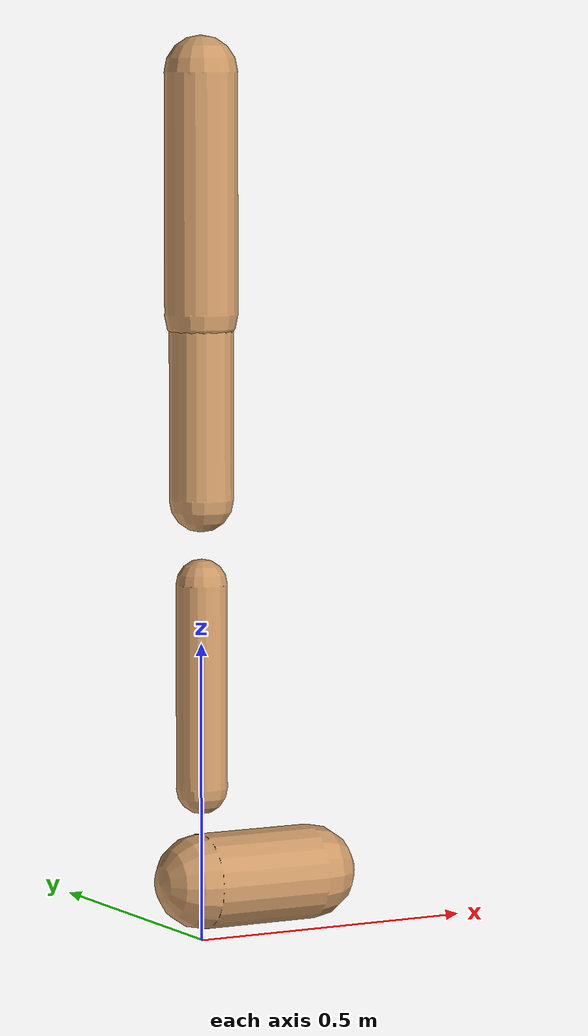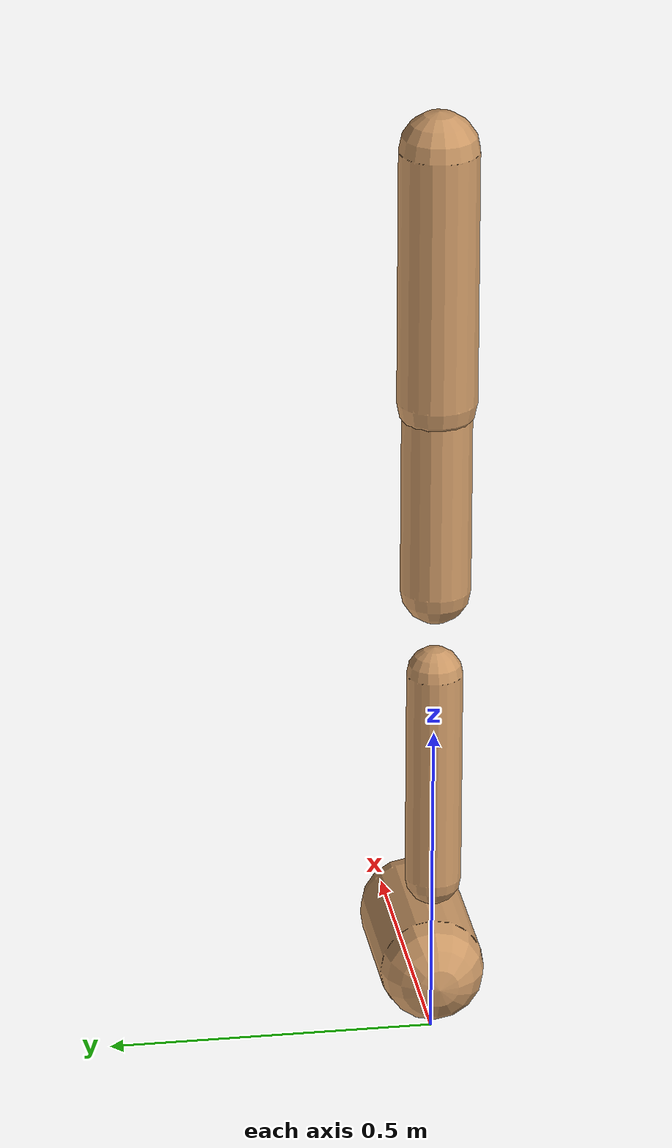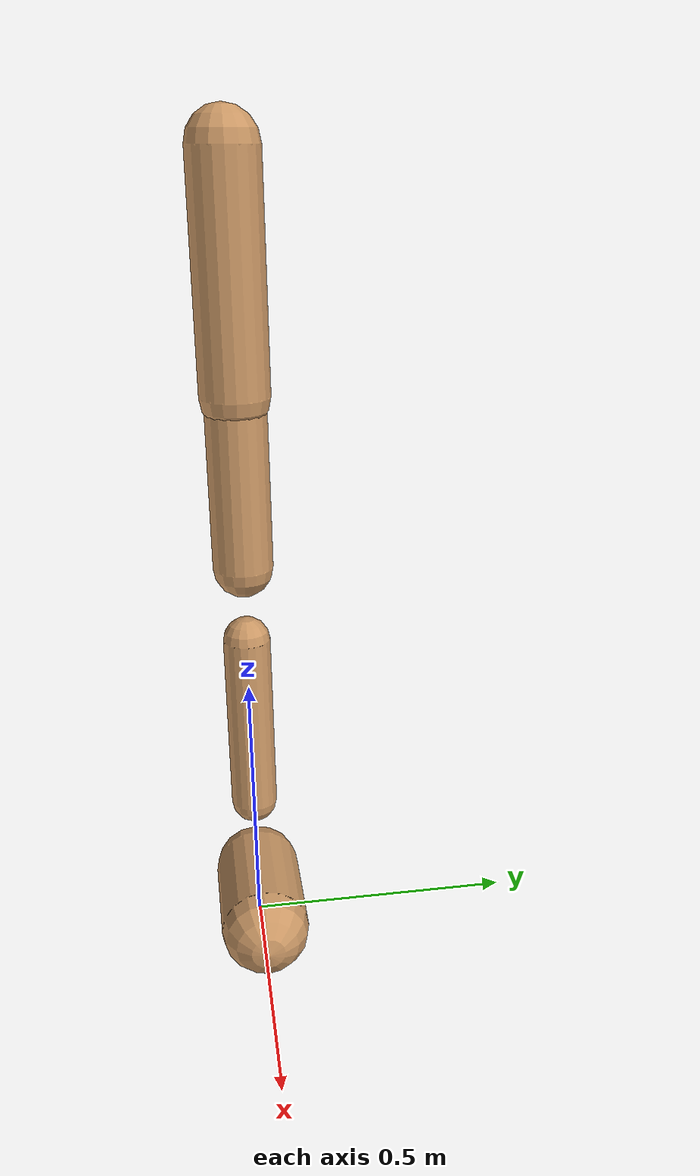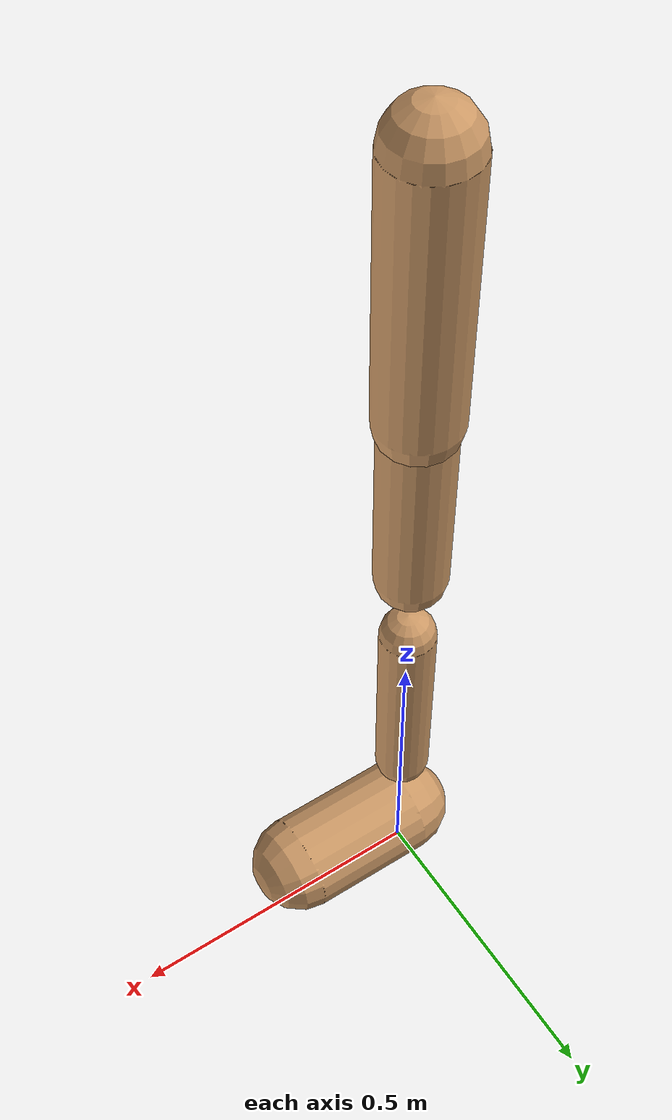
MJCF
<mujoco model="walker2d">
  <compiler angle="degree" coordinate="global" inertiafromgeom="true" />
  <default>
    <joint armature="0.01" damping=".1" limited="true" />
    <geom conaffinity="0" condim="3" contype="1" density="1000" friction="0.8 .1 .1" rgba="0.8 0.6 .4 1" />
  </default>
  <option integrator="RK4" timestep="0.002" />
  <worldbody>

    <body name="torso" pos="0 0 -0.2996764879103832">
      <joint armature="0" axis="1 0 0" damping="0" limited="false" name="ignorex" pos="0 0 0" stiffness="0" type="slide" />
      <joint armature="0" axis="0 0 1" damping="0" limited="false" name="ignorez" pos="0 0 0" ref="1.25" stiffness="0" type="slide" />
      <joint armature="0" axis="0 1 0" damping="0" limited="false" name="ignorey" pos="0 0 0" stiffness="0" type="hinge" />
      <geom fromto="0 0 1.45 0 0 1.05" name="torso_geom" size="0.06151413530647152" type="capsule" />
      <body name="thigh">
        <joint axis="0 -1 0" name="thigh_joint" pos="0 0 1.05" range="-150 0" type="hinge" />
        <geom fromto="0.0 0.0 1.05 0.0 0.0 0.7419520205891289" name="thigh_geom" size="0.054085147337441034" type="capsule" />
        <body name="leg" pos="0.0 0.0 0.14195202058912892">
          <joint axis="0 -1 0" name="leg_joint" pos="0 0 0.6" range="-150 0" type="hinge" />
          <geom fromto="0.0 0.0 0.6 0.0 0.0 0.2577244673212543" name="leg_geom" size="0.04326811786995283" type="capsule" />
          <body name="foot" pos="0.0 0.0 0.1577244673212543">
            <joint axis="0 -1 0" name="foot_joint" pos="0 0 0.1" range="-45 45" type="hinge" />
            <geom fromto="-0.0 0.0 0.1 0.20231993185337932 0.0 0.1" name="foot_geom" size="0.08025703712906881" type="capsule" />
          </body>
        </body>
      </body>

      <body name="thigh_left">
        <joint axis="0 -1 0" name="thigh_left_joint" pos="0 0 1.05" range="-150 0" type="hinge" />
        <geom fromto="0.0 0.0 1.05 0.0 0.0 0.7419520205891289" name="thigh_left_geom" rgba=".7 .3 .6 1" size="0.054085147337441034" type="capsule" />
        <body name="leg_left" pos="0.0 0.0 0.14195202058912892">
          <joint axis="0 -1 0" name="leg_left_joint" pos="0 0 0.6" range="-150 0" type="hinge" />
          <geom fromto="0.0 0.0 0.6 0.0 0.0 0.2577244673212543" name="leg_left_geom" rgba=".7 .3 .6 1" size="0.04326811786995283" type="capsule" />
          <body name="foot_left" pos="0.0 0.0 0.1577244673212543">
            <joint axis="0 -1 0" name="foot_left_joint" pos="0 0 0.1" range="-45 45" type="hinge" />
            <geom fromto="-0.0 0.0 0.1 0.20231993185337932 0.0 0.1" name="foot_left_geom" rgba=".7 .3 .6 1" size="0.08025703712906881" type="capsule" />
          </body>
        </body>
      </body>
    </body>
  </worldbody>
  <actuator>

    <motor ctrllimited="true" ctrlrange="-1.0 1.0" gear="100" joint="thigh_joint" />
    <motor ctrllimited="true" ctrlrange="-1.0 1.0" gear="100" joint="leg_joint" />
    <motor ctrllimited="true" ctrlrange="-1.0 1.0" gear="100" joint="foot_joint" />
    <motor ctrllimited="true" ctrlrange="-1.0 1.0" gear="100" joint="thigh_left_joint" />
    <motor ctrllimited="true" ctrlrange="-1.0 1.0" gear="100" joint="leg_left_joint" />
    <motor ctrllimited="true" ctrlrange="-1.0 1.0" gear="100" joint="foot_left_joint" />

  </actuator>
</mujoco>
